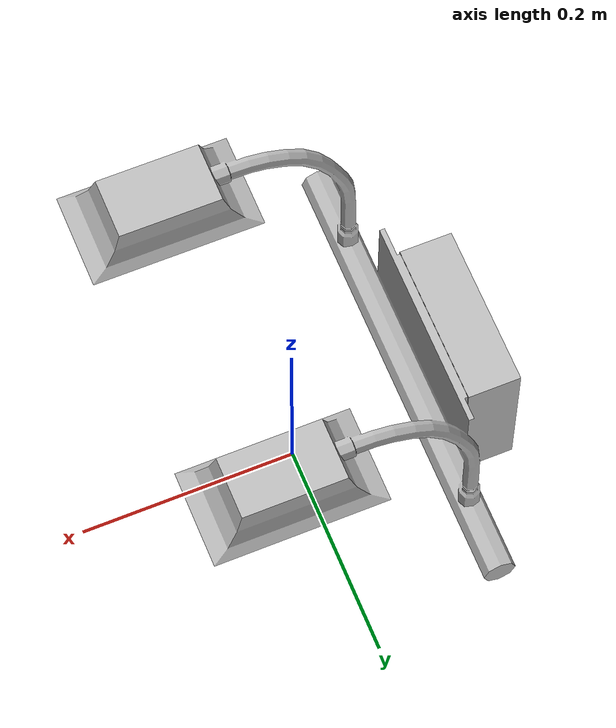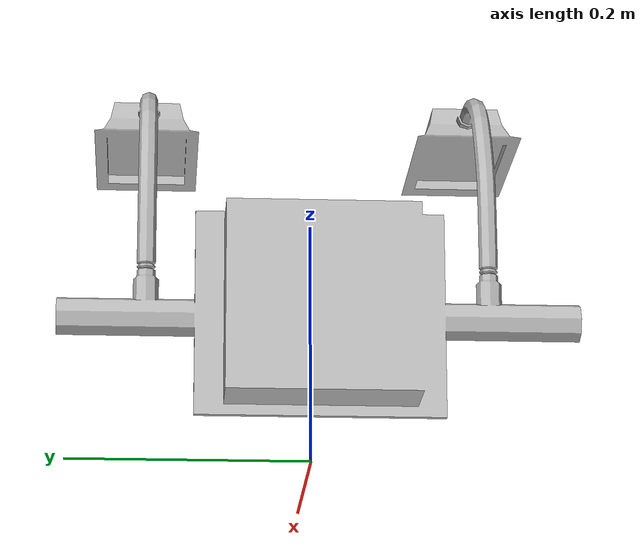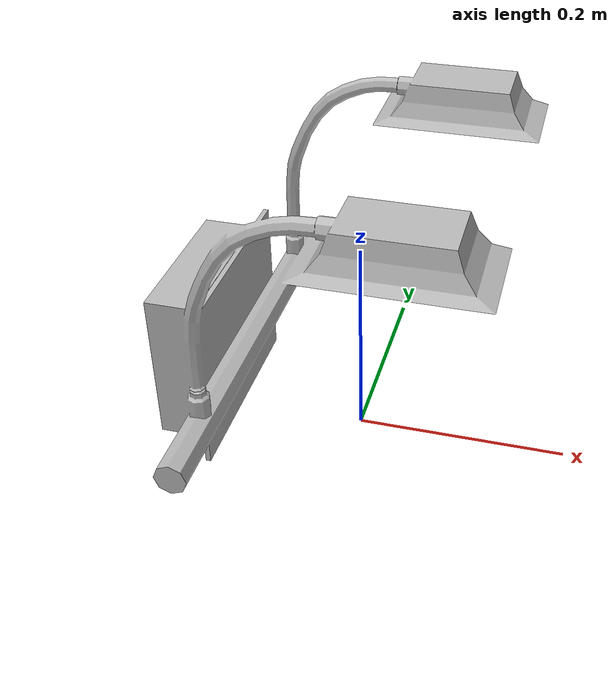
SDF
<?xml version='1.0'?>
<sdf version='1.4'>
  <model name='180'>
    <pose>0 0 0 0 0 0</pose>
    <static>true</static>
    <link name='link'>
      <collision name='collision'>
        <pose>0 0 0 0 0 0</pose>
        <geometry>
          <box>
            <size>0.32 0.41 2</size>
          </box>
        </geometry>
      </collision>
      <visual name='visual'>
        <pose>0 0 0 0 0 0</pose>
        <geometry>
          <mesh><uri>model://180/180.dae</uri></mesh>
        </geometry>
      </visual>
    </link>
  </model>
</sdf>
